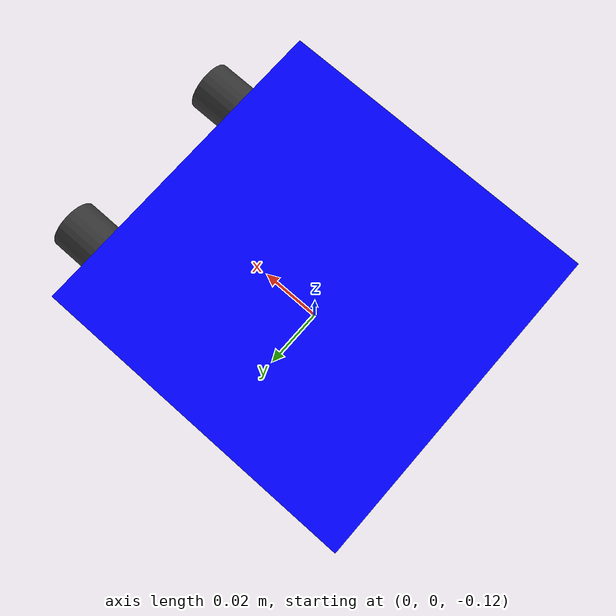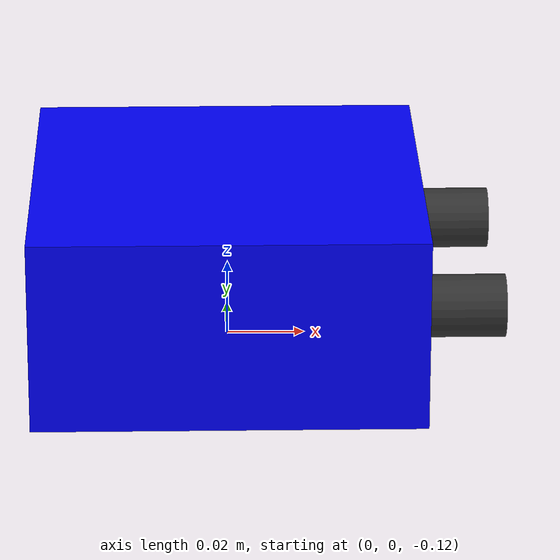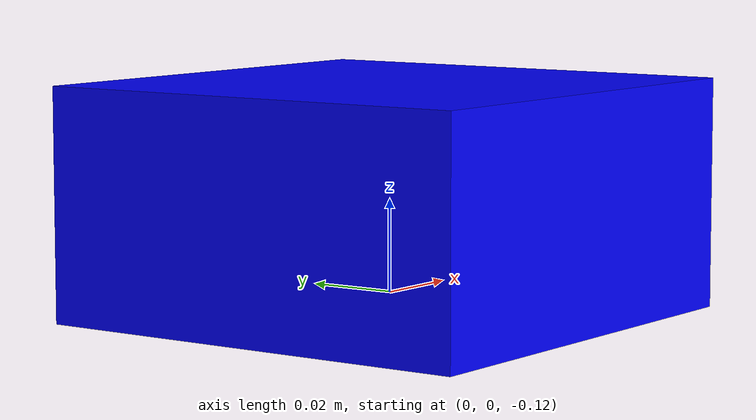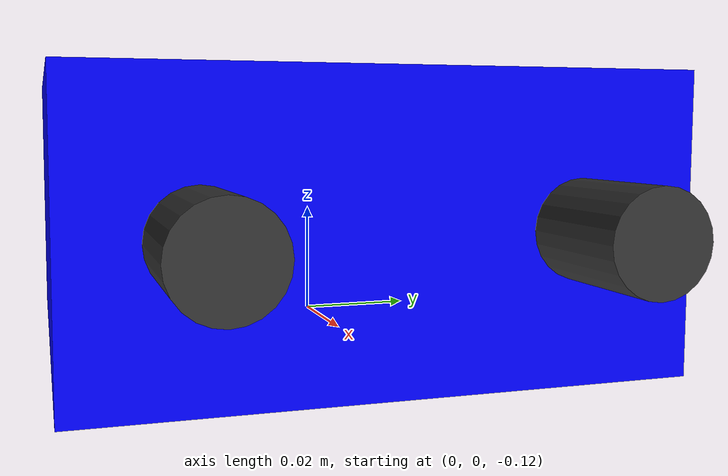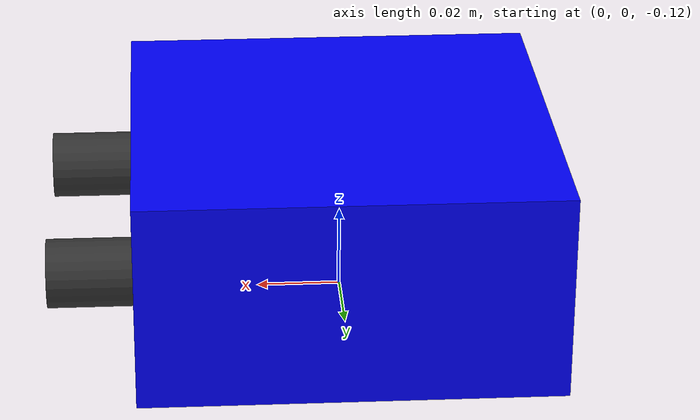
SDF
<?xml version="1.0" ?>
<sdf version="1.7">
  <model name="stereo_camera">
    <pose>0 0 0 0 0 0</pose>

    <link name="camera_link">
      <pose>0 0 0 0 0 0</pose>

      <!-- Simple cube to visualize the camera body -->
      <visual name="camera_visual">
        <pose>0 0 -0.1 0 0 0</pose>
        <geometry>
          <box>
            <size>0.1 0.1 0.05</size>
          </box>
        </geometry>
        <material>
          <ambient>0 0 1 1</ambient>
          <diffuse>0 0 1 1</diffuse>
          <specular>0.1 0.1 0.1 1</specular>
        </material>
      </visual>

      <collision name="camera_collision">
        <pose>0 0 -0.1 0 0 0</pose>
        <geometry>
          <box>
            <size>0.1 0.1 0.025</size>
          </box>
        </geometry>
      </collision>

      <!-- Left camera lens -->
      <visual name="left_camera_lens">
        <pose>0.06 -0.03 -0.1 0 1.5708 0</pose>
        <geometry>
          <cylinder>
            <radius>0.008</radius>
            <length>0.02</length>
          </cylinder>
        </geometry>
        <material>
          <ambient>0.1 0.1 0.1 1</ambient>
          <diffuse>0.2 0.2 0.2 1</diffuse>
          <specular>0.5 0.5 0.5 1</specular>
        </material>
      </visual>

      <!-- Right camera lens -->
      <visual name="right_camera_lens">
        <pose>0.06 0.03 -0.1 0 1.5708 0</pose>
        <geometry>
          <cylinder>
            <radius>0.008</radius>
            <length>0.02</length>
          </cylinder>
        </geometry>
        <material>
          <ambient>0.1 0.1 0.1 1</ambient>
          <diffuse>0.2 0.2 0.2 1</diffuse>
          <specular>0.5 0.5 0.5 1</specular>
        </material>
      </visual>

      <!-- Left camera sensor -->
      <sensor name="left_camera" type="camera">
        <pose>0 0 0 0 0 0</pose>
        <camera>
          <horizontal_fov>1.3962634</horizontal_fov>
          <image>
            <width>640</width>
            <height>480</height>
            <format>R8G8B8</format>
          </image>
          <clip>
            <near>0.5</near>
            <far>3.5</far>
          </clip>
        </camera>
        <always_on>1</always_on>
        <update_rate>10</update_rate>
        <visualize>true</visualize>
      </sensor>

      <!-- Right camera sensor -->
      <sensor name="right_camera" type="camera">
        <pose>0 0.12 0 0 0 0</pose>
        <camera>
          <horizontal_fov>1.3962634</horizontal_fov>
          <image>
            <width>640</width>
            <height>480</height>
            <format>R8G8B8</format>
          </image>
          <clip>
            <near>0.5</near>
            <far>3.5</far>
          </clip>
        </camera>
        <always_on>1</always_on>
        <update_rate>10</update_rate>
        <visualize>true</visualize>
      </sensor>

      <!-- Inertial properties -->
      <inertial>
        <mass>0.1</mass>
        <inertia>
          <ixx>1e-5</ixx>
          <iyy>1e-5</iyy>
          <izz>1e-5</izz>
          <ixy>0</ixy>
          <ixz>0</ixz>
          <iyz>0</iyz>
        </inertia>
      </inertial>

    </link>

    <plugin
        name="ignition::gazebo::systems::Sensors"
        filename="libignition-gazebo-sensors-system.so"/>

    <static>false</static>
  </model>
</sdf>
